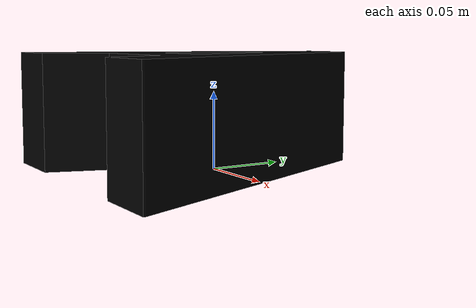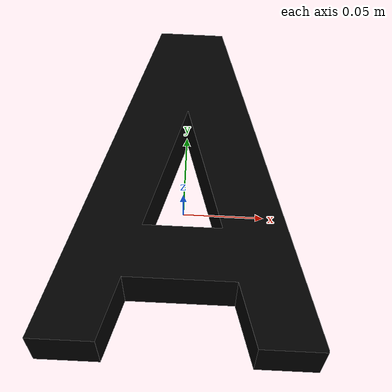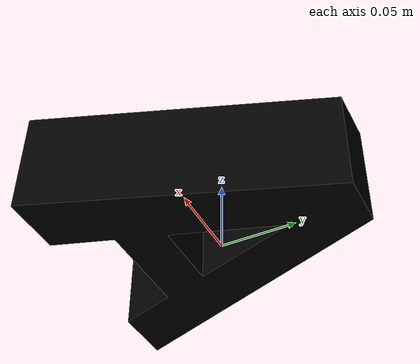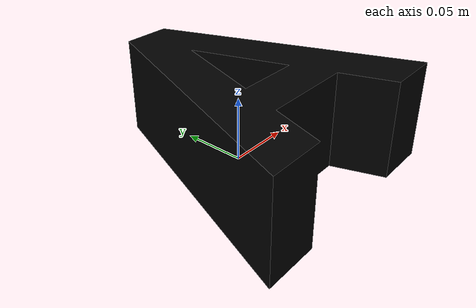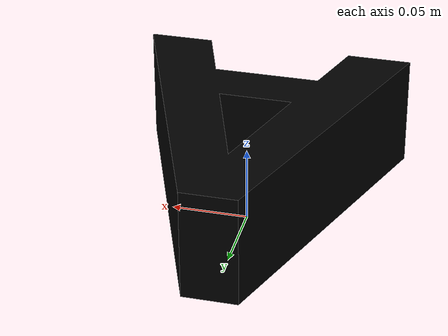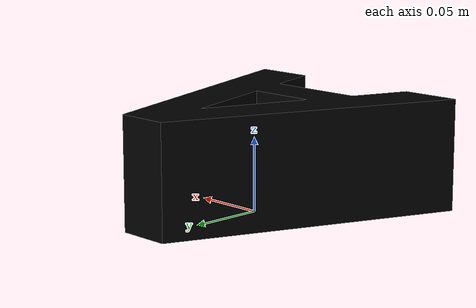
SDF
<?xml version="1.0"?>
<sdf version="1.7">
  <model name="t_shape">
    <link name="vertical_link">
      <inertial>
        <pose>0 0 0 0 0 0</pose>
        <mass>1</mass>
        <!-- Inertia values were calculated to be consistent with the mass and
             geometry size, assuming a uniform density. -->
        <inertia>
            <ixx>0.003</ixx>
            <iyy>0.003 </iyy>
            <izz>0.007 </izz>
            <ixy>0.0</ixy>
            <ixz>0.0</ixz>
            <iyz>0.0</iyz>
        </inertia>
      </inertial>

      <visual name="vertical_link">
        <pose>0 0 0 0 0 0</pose>
        <geometry>
          <mesh>
            <uri>letter_a.obj</uri>
          </mesh>
        </geometry>
        <material>
          <diffuse>0 0 0 1</diffuse>
        </material>
      </visual>
      <collision name="vertical_link_volume">
        <pose>0 0 0 0 0 0</pose>
            <geometry>
          <mesh>
            <uri>letter_a.obj</uri>
          </mesh>
        </geometry>
        <drake:proximity_properties>
          <drake:compliant_hydroelastic/>
          <drake:hydroelastic_modulus> 3.0e7 </drake:hydroelastic_modulus>
          <drake:mesh_resolution_hint> 0.18 </drake:mesh_resolution_hint>
          <drake:hunt_crossley_dissipation>10</drake:hunt_crossley_dissipation>
          <drake:mu_dynamic>0.3</drake:mu_dynamic>
        </drake:proximity_properties>
      </collision>
      <collision name="corner_nxynz_">
        <geometry>
          <sphere>
            <radius>0.001</radius>
          </sphere>
        </geometry>
        <drake:proximity_properties>
        <drake:mu_dynamic>0.3</drake:mu_dynamic>
        </drake:proximity_properties>
        <pose> -0.08859720 0.09408310 0.00000000 0 0 0</pose>
      </collision>
      <collision name="corner_nxnynz">
        <geometry>
          <sphere>
            <radius>0.001</radius>
          </sphere>
        </geometry>
        <drake:proximity_properties>
        <drake:mu_dynamic>0.3</drake:mu_dynamic>
        </drake:proximity_properties>
        <pose> -0.08859720 -0.09651270 0.00000000 0 0 0</pose>
      </collision>
      <collision name="corner_xynz">
        <geometry>
          <sphere>
            <radius>0.001</radius>
          </sphere>
        </geometry>
        <drake:proximity_properties>
        <drake:mu_dynamic>0.3</drake:mu_dynamic>
        </drake:proximity_properties>
        <pose> 0.08951880 -0.00121480 0.00000000 0 0 0</pose>
      </collision>
    </link>
  </model>
</sdf>
